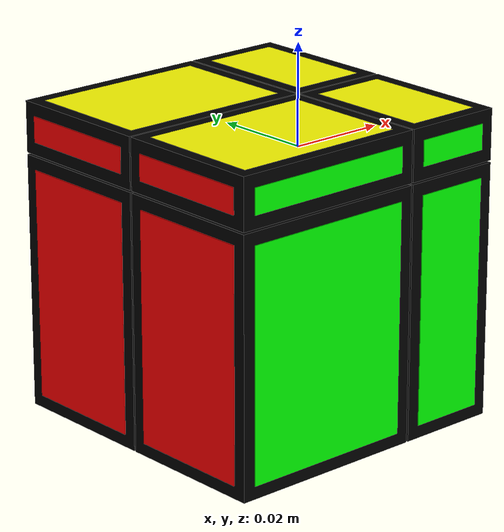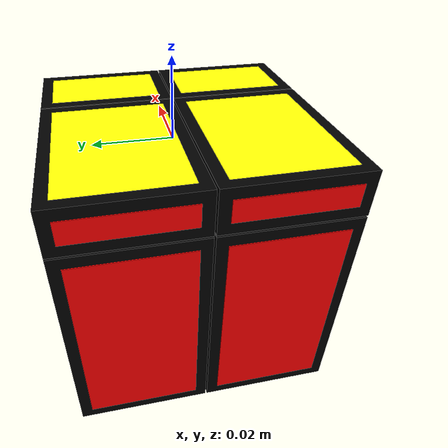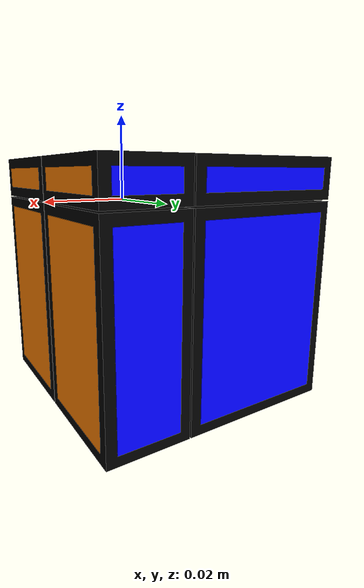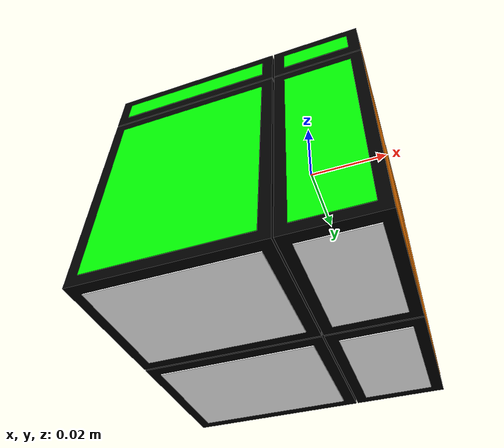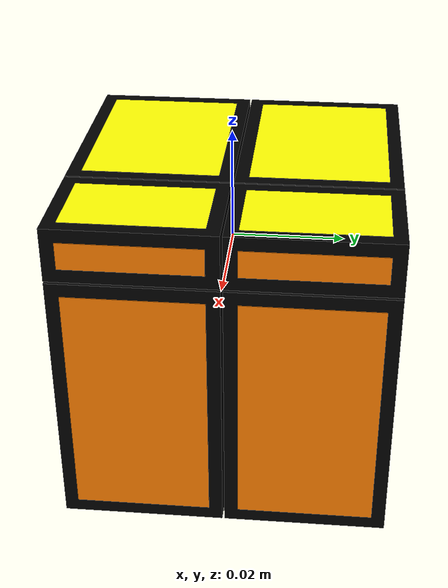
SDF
<?xml version="1.0" ?>
<sdf version="1.7">
	<model name="mirror_cube_2x2">
		<link name="center_mirror_1"/>
		<link name="cubie_0_0_0">
			<pose>-0.0202 -0.0152 -0.0252 0.0 0.0 0.0</pose>
			<inertial>
				<mass>0.023399999999999997</mass>
				<inertia>
					<ixx>6.629999999999999e-06</ixx>
					<ixy>0.0</ixy>
					<ixz>0.0</ixz>
					<iyy>7.994999999999999e-06</iyy>
					<iyz>0.0</iyz>
					<izz>4.874999999999999e-06</izz>
				</inertia>
			</inertial>
			<collision name="collision">
				<geometry>
					<box>
						<size>0.04 0.03 0.05</size>
					</box>
				</geometry>
				<surface>
					<friction>
						<ode>
							<mu>0</mu>
							<mu2>0</mu2>
						</ode>
					</friction>
				</surface>
			</collision>
			<visual name="black">
				<geometry>
					<box>
						<size>0.04 0.03 0.05</size>
					</box>
				</geometry>
				<material>
					<diffuse>0 0 0 1</diffuse>
				</material>
			</visual>
			<visual name="red">
				<pose>-0.02 0.0 0.0 0.0 0.0 0.0</pose>
				<geometry>
					<box>
						<size>0.00035 0.025 0.045</size>
					</box>
				</geometry>
				<material>
					<diffuse>1 0 0 1</diffuse>
				</material>
			</visual>
			<visual name="green">
				<pose>0.0 -0.015 0.0 0.0 0.0 0.0</pose>
				<geometry>
					<box>
						<size>0.035 0.00025 0.045</size>
					</box>
				</geometry>
				<material>
					<diffuse>0 1 0 1</diffuse>
				</material>
			</visual>
			<visual name="white">
				<pose>0.0 0.0 -0.025 0.0 0.0 0.0</pose>
				<geometry>
					<box>
						<size>0.035 0.025 0.00045</size>
					</box>
				</geometry>
				<material>
					<diffuse>1 1 1 1</diffuse>
				</material>
			</visual>
		</link>
		<joint name="ball_0_0_0" type="ball">
			<pose>0.0202 0.0152 0.0252 -0.0 -0.0 -0.0</pose>
			<parent>center_mirror_1</parent>
			<child>cubie_0_0_0</child>
			<axis>
				<dynamics>
					<damping>0.1</damping>
				</dynamics>
				<limit>
					<effort>0</effort>
				</limit>
			</axis>
		</joint>
		<link name="cubie_0_0_1">
			<pose>-0.0202 -0.0152 0.005199999999999997 0.0 0.0 0.0</pose>
			<inertial>
				<mass>0.0046799999999999975</mass>
				<inertia>
					<ixx>3.899999999999997e-07</ixx>
					<ixy>0.0</ixy>
					<ixz>0.0</ixz>
					<iyy>6.629999999999996e-07</iyy>
					<iyz>0.0</iyz>
					<izz>9.749999999999996e-07</izz>
				</inertia>
			</inertial>
			<collision name="collision">
				<geometry>
					<box>
						<size>0.04 0.03 0.009999999999999995</size>
					</box>
				</geometry>
				<surface>
					<friction>
						<ode>
							<mu>0</mu>
							<mu2>0</mu2>
						</ode>
					</friction>
				</surface>
			</collision>
			<visual name="black">
				<geometry>
					<box>
						<size>0.04 0.03 0.009999999999999995</size>
					</box>
				</geometry>
				<material>
					<diffuse>0 0 0 1</diffuse>
				</material>
			</visual>
			<visual name="red">
				<pose>-0.02 0.0 0.0 0.0 0.0 0.0</pose>
				<geometry>
					<box>
						<size>0.00035 0.025 0.005</size>
					</box>
				</geometry>
				<material>
					<diffuse>1 0 0 1</diffuse>
				</material>
			</visual>
			<visual name="green">
				<pose>0.0 -0.015 0.0 0.0 0.0 0.0</pose>
				<geometry>
					<box>
						<size>0.035 0.00025 0.005</size>
					</box>
				</geometry>
				<material>
					<diffuse>0 1 0 1</diffuse>
				</material>
			</visual>
			<visual name="yellow">
				<pose>0.0 0.0 0.0049999999999999975 0.0 0.0 0.0</pose>
				<geometry>
					<box>
						<size>0.035 0.025 5e-05</size>
					</box>
				</geometry>
				<material>
					<diffuse>1 1 0 1</diffuse>
				</material>
			</visual>
		</link>
		<joint name="ball_0_0_1" type="ball">
			<pose>0.0202 0.0152 -0.005199999999999997 -0.0 -0.0 -0.0</pose>
			<parent>center_mirror_1</parent>
			<child>cubie_0_0_1</child>
			<axis>
				<dynamics>
					<damping>0.1</damping>
				</dynamics>
				<limit>
					<effort>0</effort>
				</limit>
			</axis>
		</joint>
		<link name="cubie_0_1_0">
			<pose>-0.0202 0.0152 -0.0252 0.0 0.0 0.0</pose>
			<inertial>
				<mass>0.023399999999999997</mass>
				<inertia>
					<ixx>6.629999999999999e-06</ixx>
					<ixy>0.0</ixy>
					<ixz>0.0</ixz>
					<iyy>7.994999999999999e-06</iyy>
					<iyz>0.0</iyz>
					<izz>4.874999999999999e-06</izz>
				</inertia>
			</inertial>
			<collision name="collision">
				<geometry>
					<box>
						<size>0.04 0.03 0.05</size>
					</box>
				</geometry>
				<surface>
					<friction>
						<ode>
							<mu>0</mu>
							<mu2>0</mu2>
						</ode>
					</friction>
				</surface>
			</collision>
			<visual name="black">
				<geometry>
					<box>
						<size>0.04 0.03 0.05</size>
					</box>
				</geometry>
				<material>
					<diffuse>0 0 0 1</diffuse>
				</material>
			</visual>
			<visual name="red">
				<pose>-0.02 0.0 0.0 0.0 0.0 0.0</pose>
				<geometry>
					<box>
						<size>0.00035 0.025 0.045</size>
					</box>
				</geometry>
				<material>
					<diffuse>1 0 0 1</diffuse>
				</material>
			</visual>
			<visual name="blue">
				<pose>0.0 0.015 0.0 0.0 0.0 0.0</pose>
				<geometry>
					<box>
						<size>0.035 0.00025 0.045</size>
					</box>
				</geometry>
				<material>
					<diffuse>0 0 1 1</diffuse>
				</material>
			</visual>
			<visual name="white">
				<pose>0.0 0.0 -0.025 0.0 0.0 0.0</pose>
				<geometry>
					<box>
						<size>0.035 0.025 0.00045</size>
					</box>
				</geometry>
				<material>
					<diffuse>1 1 1 1</diffuse>
				</material>
			</visual>
		</link>
		<joint name="ball_0_1_0" type="ball">
			<pose>0.0202 -0.0152 0.0252 -0.0 -0.0 -0.0</pose>
			<parent>center_mirror_1</parent>
			<child>cubie_0_1_0</child>
			<axis>
				<dynamics>
					<damping>0.1</damping>
				</dynamics>
				<limit>
					<effort>0</effort>
				</limit>
			</axis>
		</joint>
		<link name="cubie_0_1_1">
			<pose>-0.0202 0.0152 0.005199999999999997 0.0 0.0 0.0</pose>
			<inertial>
				<mass>0.0046799999999999975</mass>
				<inertia>
					<ixx>3.899999999999997e-07</ixx>
					<ixy>0.0</ixy>
					<ixz>0.0</ixz>
					<iyy>6.629999999999996e-07</iyy>
					<iyz>0.0</iyz>
					<izz>9.749999999999996e-07</izz>
				</inertia>
			</inertial>
			<collision name="collision">
				<geometry>
					<box>
						<size>0.04 0.03 0.009999999999999995</size>
					</box>
				</geometry>
				<surface>
					<friction>
						<ode>
							<mu>0</mu>
							<mu2>0</mu2>
						</ode>
					</friction>
				</surface>
			</collision>
			<visual name="black">
				<geometry>
					<box>
						<size>0.04 0.03 0.009999999999999995</size>
					</box>
				</geometry>
				<material>
					<diffuse>0 0 0 1</diffuse>
				</material>
			</visual>
			<visual name="red">
				<pose>-0.02 0.0 0.0 0.0 0.0 0.0</pose>
				<geometry>
					<box>
						<size>0.00035 0.025 0.005</size>
					</box>
				</geometry>
				<material>
					<diffuse>1 0 0 1</diffuse>
				</material>
			</visual>
			<visual name="blue">
				<pose>0.0 0.015 0.0 0.0 0.0 0.0</pose>
				<geometry>
					<box>
						<size>0.035 0.00025 0.005</size>
					</box>
				</geometry>
				<material>
					<diffuse>0 0 1 1</diffuse>
				</material>
			</visual>
			<visual name="yellow">
				<pose>0.0 0.0 0.0049999999999999975 0.0 0.0 0.0</pose>
				<geometry>
					<box>
						<size>0.035 0.025 5e-05</size>
					</box>
				</geometry>
				<material>
					<diffuse>1 1 0 1</diffuse>
				</material>
			</visual>
		</link>
		<joint name="ball_0_1_1" type="ball">
			<pose>0.0202 -0.0152 -0.005199999999999997 -0.0 -0.0 -0.0</pose>
			<parent>center_mirror_1</parent>
			<child>cubie_0_1_1</child>
			<axis>
				<dynamics>
					<damping>0.1</damping>
				</dynamics>
				<limit>
					<effort>0</effort>
				</limit>
			</axis>
		</joint>
		<link name="cubie_1_0_0">
			<pose>0.010199999999999999 -0.0152 -0.0252 0.0 0.0 0.0</pose>
			<inertial>
				<mass>0.011699999999999997</mass>
				<inertia>
					<ixx>3.314999999999999e-06</ixx>
					<ixy>0.0</ixy>
					<ixz>0.0</ixz>
					<iyy>2.8274999999999996e-06</iyy>
					<iyz>0.0</iyz>
					<izz>1.2674999999999995e-06</izz>
				</inertia>
			</inertial>
			<collision name="collision">
				<geometry>
					<box>
						<size>0.019999999999999997 0.03 0.05</size>
					</box>
				</geometry>
				<surface>
					<friction>
						<ode>
							<mu>0</mu>
							<mu2>0</mu2>
						</ode>
					</friction>
				</surface>
			</collision>
			<visual name="black">
				<geometry>
					<box>
						<size>0.019999999999999997 0.03 0.05</size>
					</box>
				</geometry>
				<material>
					<diffuse>0 0 0 1</diffuse>
				</material>
			</visual>
			<visual name="orange">
				<pose>0.009999999999999998 0.0 0.0 0.0 0.0 0.0</pose>
				<geometry>
					<box>
						<size>0.00015 0.025 0.045</size>
					</box>
				</geometry>
				<material>
					<diffuse>1.0 0.5 0.0 1.0</diffuse>
				</material>
			</visual>
			<visual name="green">
				<pose>0.0 -0.015 0.0 0.0 0.0 0.0</pose>
				<geometry>
					<box>
						<size>0.015 0.00025 0.045</size>
					</box>
				</geometry>
				<material>
					<diffuse>0 1 0 1</diffuse>
				</material>
			</visual>
			<visual name="white">
				<pose>0.0 0.0 -0.025 0.0 0.0 0.0</pose>
				<geometry>
					<box>
						<size>0.015 0.025 0.00045</size>
					</box>
				</geometry>
				<material>
					<diffuse>1 1 1 1</diffuse>
				</material>
			</visual>
		</link>
		<joint name="ball_1_0_0" type="ball">
			<pose>-0.010199999999999999 0.0152 0.0252 -0.0 -0.0 -0.0</pose>
			<parent>center_mirror_1</parent>
			<child>cubie_1_0_0</child>
			<axis>
				<dynamics>
					<damping>0.1</damping>
				</dynamics>
				<limit>
					<effort>0</effort>
				</limit>
			</axis>
		</joint>
		<link name="cubie_1_0_1">
			<pose>0.010199999999999999 -0.0152 0.005199999999999997 0.0 0.0 0.0</pose>
			<inertial>
				<mass>0.002339999999999998</mass>
				<inertia>
					<ixx>1.949999999999998e-07</ixx>
					<ixy>0.0</ixy>
					<ixz>0.0</ixz>
					<iyy>9.749999999999987e-08</iyy>
					<iyz>0.0</iyz>
					<izz>2.534999999999998e-07</izz>
				</inertia>
			</inertial>
			<collision name="collision">
				<geometry>
					<box>
						<size>0.019999999999999997 0.03 0.009999999999999995</size>
					</box>
				</geometry>
				<surface>
					<friction>
						<ode>
							<mu>0</mu>
							<mu2>0</mu2>
						</ode>
					</friction>
				</surface>
			</collision>
			<visual name="black">
				<geometry>
					<box>
						<size>0.019999999999999997 0.03 0.009999999999999995</size>
					</box>
				</geometry>
				<material>
					<diffuse>0 0 0 1</diffuse>
				</material>
			</visual>
			<visual name="orange">
				<pose>0.009999999999999998 0.0 0.0 0.0 0.0 0.0</pose>
				<geometry>
					<box>
						<size>0.00015 0.025 0.005</size>
					</box>
				</geometry>
				<material>
					<diffuse>1.0 0.5 0.0 1.0</diffuse>
				</material>
			</visual>
			<visual name="green">
				<pose>0.0 -0.015 0.0 0.0 0.0 0.0</pose>
				<geometry>
					<box>
						<size>0.015 0.00025 0.005</size>
					</box>
				</geometry>
				<material>
					<diffuse>0 1 0 1</diffuse>
				</material>
			</visual>
			<visual name="yellow">
				<pose>0.0 0.0 0.0049999999999999975 0.0 0.0 0.0</pose>
				<geometry>
					<box>
						<size>0.015 0.025 5e-05</size>
					</box>
				</geometry>
				<material>
					<diffuse>1 1 0 1</diffuse>
				</material>
			</visual>
		</link>
		<joint name="ball_1_0_1" type="ball">
			<pose>-0.010199999999999999 0.0152 -0.005199999999999997 -0.0 -0.0 -0.0</pose>
			<parent>center_mirror_1</parent>
			<child>cubie_1_0_1</child>
			<axis>
				<dynamics>
					<damping>0.1</damping>
				</dynamics>
				<limit>
					<effort>0</effort>
				</limit>
			</axis>
		</joint>
		<link name="cubie_1_1_0">
			<pose>0.010199999999999999 0.0152 -0.0252 0.0 0.0 0.0</pose>
			<inertial>
				<mass>0.011699999999999997</mass>
				<inertia>
					<ixx>3.314999999999999e-06</ixx>
					<ixy>0.0</ixy>
					<ixz>0.0</ixz>
					<iyy>2.8274999999999996e-06</iyy>
					<iyz>0.0</iyz>
					<izz>1.2674999999999995e-06</izz>
				</inertia>
			</inertial>
			<collision name="collision">
				<geometry>
					<box>
						<size>0.019999999999999997 0.03 0.05</size>
					</box>
				</geometry>
				<surface>
					<friction>
						<ode>
							<mu>0</mu>
							<mu2>0</mu2>
						</ode>
					</friction>
				</surface>
			</collision>
			<visual name="black">
				<geometry>
					<box>
						<size>0.019999999999999997 0.03 0.05</size>
					</box>
				</geometry>
				<material>
					<diffuse>0 0 0 1</diffuse>
				</material>
			</visual>
			<visual name="orange">
				<pose>0.009999999999999998 0.0 0.0 0.0 0.0 0.0</pose>
				<geometry>
					<box>
						<size>0.00015 0.025 0.045</size>
					</box>
				</geometry>
				<material>
					<diffuse>1.0 0.5 0.0 1.0</diffuse>
				</material>
			</visual>
			<visual name="blue">
				<pose>0.0 0.015 0.0 0.0 0.0 0.0</pose>
				<geometry>
					<box>
						<size>0.015 0.00025 0.045</size>
					</box>
				</geometry>
				<material>
					<diffuse>0 0 1 1</diffuse>
				</material>
			</visual>
			<visual name="white">
				<pose>0.0 0.0 -0.025 0.0 0.0 0.0</pose>
				<geometry>
					<box>
						<size>0.015 0.025 0.00045</size>
					</box>
				</geometry>
				<material>
					<diffuse>1 1 1 1</diffuse>
				</material>
			</visual>
		</link>
		<joint name="ball_1_1_0" type="ball">
			<pose>-0.010199999999999999 -0.0152 0.0252 -0.0 -0.0 -0.0</pose>
			<parent>center_mirror_1</parent>
			<child>cubie_1_1_0</child>
			<axis>
				<dynamics>
					<damping>0.1</damping>
				</dynamics>
				<limit>
					<effort>0</effort>
				</limit>
			</axis>
		</joint>
		<link name="cubie_1_1_1">
			<pose>0.010199999999999999 0.0152 0.005199999999999997 0.0 0.0 0.0</pose>
			<inertial>
				<mass>0.002339999999999998</mass>
				<inertia>
					<ixx>1.949999999999998e-07</ixx>
					<ixy>0.0</ixy>
					<ixz>0.0</ixz>
					<iyy>9.749999999999987e-08</iyy>
					<iyz>0.0</iyz>
					<izz>2.534999999999998e-07</izz>
				</inertia>
			</inertial>
			<collision name="collision">
				<geometry>
					<box>
						<size>0.019999999999999997 0.03 0.009999999999999995</size>
					</box>
				</geometry>
				<surface>
					<friction>
						<ode>
							<mu>0</mu>
							<mu2>0</mu2>
						</ode>
					</friction>
				</surface>
			</collision>
			<visual name="black">
				<geometry>
					<box>
						<size>0.019999999999999997 0.03 0.009999999999999995</size>
					</box>
				</geometry>
				<material>
					<diffuse>0 0 0 1</diffuse>
				</material>
			</visual>
			<visual name="orange">
				<pose>0.009999999999999998 0.0 0.0 0.0 0.0 0.0</pose>
				<geometry>
					<box>
						<size>0.00015 0.025 0.005</size>
					</box>
				</geometry>
				<material>
					<diffuse>1.0 0.5 0.0 1.0</diffuse>
				</material>
			</visual>
			<visual name="blue">
				<pose>0.0 0.015 0.0 0.0 0.0 0.0</pose>
				<geometry>
					<box>
						<size>0.015 0.00025 0.005</size>
					</box>
				</geometry>
				<material>
					<diffuse>0 0 1 1</diffuse>
				</material>
			</visual>
			<visual name="yellow">
				<pose>0.0 0.0 0.0049999999999999975 0.0 0.0 0.0</pose>
				<geometry>
					<box>
						<size>0.015 0.025 5e-05</size>
					</box>
				</geometry>
				<material>
					<diffuse>1 1 0 1</diffuse>
				</material>
			</visual>
		</link>
		<joint name="ball_1_1_1" type="ball">
			<pose>-0.010199999999999999 -0.0152 -0.005199999999999997 -0.0 -0.0 -0.0</pose>
			<parent>center_mirror_1</parent>
			<child>cubie_1_1_1</child>
			<axis>
				<dynamics>
					<damping>0.1</damping>
				</dynamics>
				<limit>
					<effort>0</effort>
				</limit>
			</axis>
		</joint>
	</model>
</sdf>
